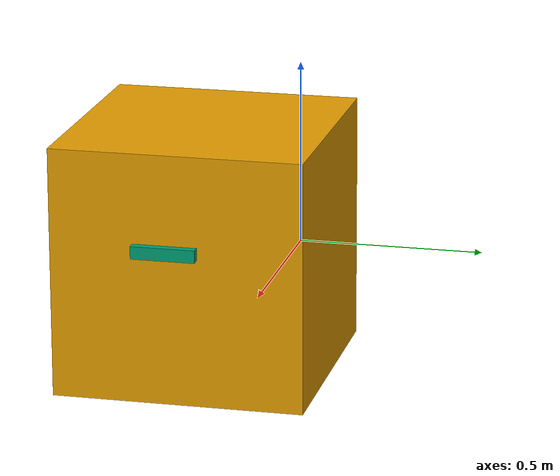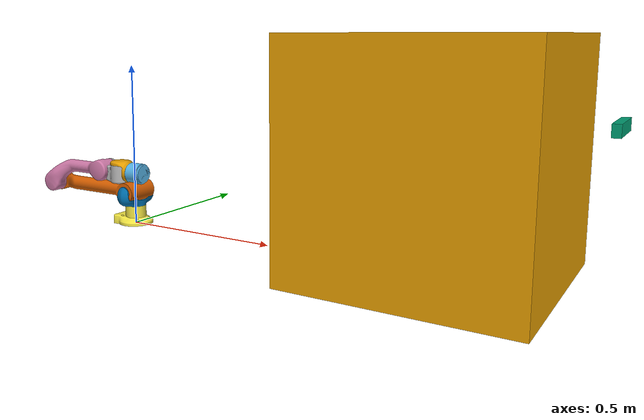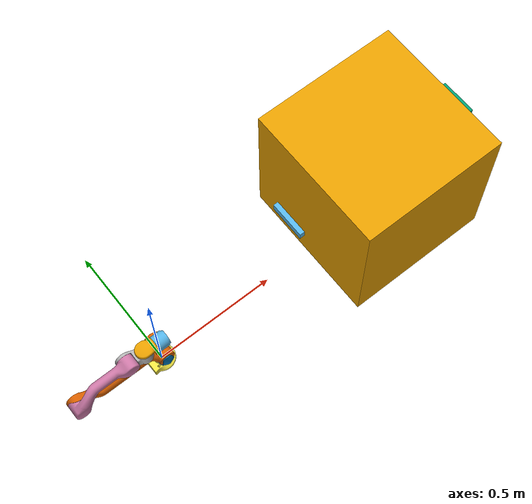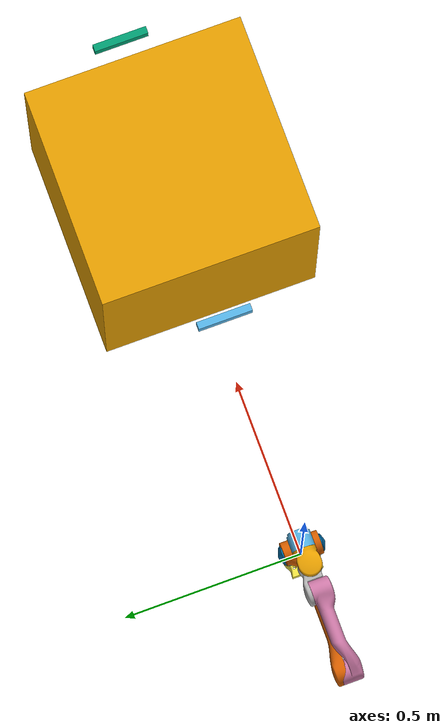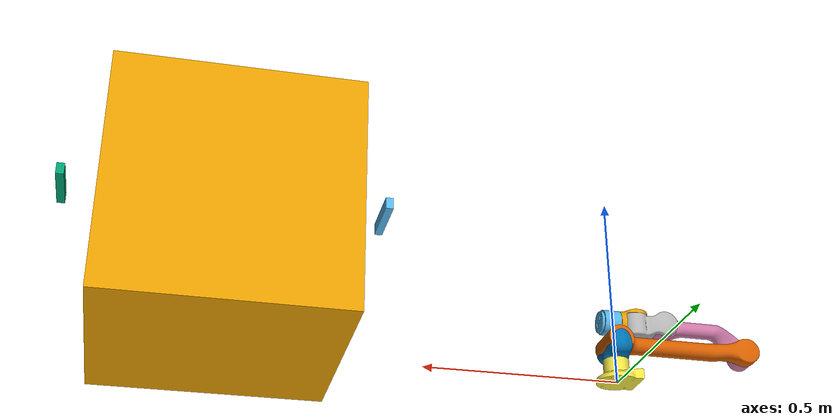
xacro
<?xml version="1.0"?>

<!-- z1_description: Unitree Z1 robotic arm -->
<robot name="z1_description" xmlns:xacro="http://www.ros.org/wiki/xacro">

    <!-- define arguments -->
    <xacro:arg name="UnitreeGripper" default="false"/> <!-- include default end-effector -->

    <!-- include xacro files -->
    <xacro:include filename="$(find z1_description)/xacro/z1.xacro"/>
    <xacro:include filename="$(find z1_description)/xacro/gazebo.xacro"/>
    <xacro:include filename="$(find z1_description)/xacro/box_with_handles.xacro"/>

    <!-- Z1 macro: expands to describe Z1 robotic arm -->
    <xacro:z1 UnitreeGripper="$(arg UnitreeGripper)"/>

    <!-- define world link and statically affix Z1 -->
    <link name="world"/>
    <joint name="base_static_joint" type="fixed">
        <!-- Z1 mounting point wrt origin (configurable) -->
        <origin rpy="0 0 0" xyz="0 0 0"/>
        <!-- define parent and child links -->
        <parent link="world"/>
        <child link="link00"/>
    </joint>

    <!-- Joint to connect box to world -->
    <joint name="box_with_handles" type="floating">
        <origin rpy="0 0 0" xyz="0 0 0"/>
        <parent link="world"/>
        <child link="box"/>
        <dynamics damping="0.1" friction="0.8"/>
    </joint>

</robot>

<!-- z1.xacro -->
<robot name="z1_description" xmlns:xacro="http://www.ros.org/wiki/xacro">

    <!-- Z1 macro: describes Unitree Z1 robotic arm -->
    <xacro:macro name="z1" params="UnitreeGripper:=false">

        <xacro:include filename="$(find z1_description)/xacro/const.xacro"/>
        <xacro:include filename="$(find z1_description)/xacro/transmission.xacro"/>

        <link name="link00">
            <visual>
                <origin rpy="0 0 0" xyz="0 0 0"/>
                <geometry>
                    <mesh filename="package://z1_description/meshes/visual/z1_Link00.dae" scale="1 1 1"/>
                </geometry>
            </visual>
            <collision>
                <geometry>
                    <cylinder length="${motor_height}" radius="${motor_diameter}"/>
                </geometry>
                <origin rpy="0 0 0" xyz="0 0 ${motor_height/2.0}"/>
            </collision>
            <inertial>
                <origin rpy="0 0 0" xyz="${L00_ComX} ${L00_ComY} ${L00_ComZ}"/>
                <mass value="${L00_Mass}"/>
                <inertia
                    ixx="${L00_Ixx}" ixy="${L00_Ixy}" ixz="${L00_Ixz}"
                    iyy="${L00_Iyy}" iyz="${L00_Iyz}"
                    izz="${L00_Izz}"/>
            </inertial>
        </link>

        <joint name="joint1" type="revolute">
            <origin rpy="0 0 0" xyz="0 0 0.0585"/>
            <parent link="link00"/>
            <child link="link01"/>
            <axis xyz="0 0 1"/>
            <dynamics damping="${jointDamping}" friction="${jointFriction}"/>
            <limit effort="${torqueMax}" velocity="${velocityMax}" lower="${joint1_PositionMin}" upper="${joint1_PositionMax}"/>
        </joint>

        <link name="link01">
            <visual>
                <origin rpy="0 0 0" xyz="0 0 0"/>
                <geometry>
                    <mesh filename="package://z1_description/meshes/visual/z1_Link01.dae" scale="1 1 1"/>
                </geometry>
            </visual>
            <inertial>
                <origin rpy="0 0 0" xyz="${L01_ComX} ${L01_ComY} ${L01_ComZ}"/>
                <mass value="${L01_Mass}"/>
                <inertia
                    ixx="${L01_Ixx}" ixy="${L01_Ixy}" ixz="${L01_Ixz}"
                    iyy="${L01_Iyy}" iyz="${L01_Iyz}"
                    izz="${L01_Izz}"/>
            </inertial>
        </link>

        <joint name="joint2" type="revolute">
            <origin rpy="0 0 0" xyz="0 0 0.045"/>
            <parent link="link01"/>
            <child link="link02"/>
            <axis xyz="0 1 0"/>
            <dynamics damping="${2*jointDamping}" friction="${2*jointFriction}"/>
            <limit effort="${2*torqueMax}" velocity="${velocityMax}" lower="${joint2_PositionMin}" upper="${joint2_PositionMax}"/>
        </joint>

        <link name="link02">
            <visual>
                <origin rpy="0 0 0" xyz="0 0 0"/>
                <geometry>
                    <mesh filename="package://z1_description/meshes/visual/z1_Link02.dae" scale="1 1 1"/>
                </geometry>
            </visual>
            <collision>
                <geometry>
                    <cylinder length="${2.0*motor_height}" radius="${motor_diameter}"/>
                </geometry>
                <origin rpy="${PI/2.0} 0 0" xyz="0 0 0"/>
            </collision>
            <collision>
                <geometry>
                    <cylinder length="${arm1_height}" radius="${arm1_diameter}"/>
                </geometry>
                <origin rpy="0 ${PI/2.0} 0" xyz="${-0.045-arm1_height/2.0} 0 0"/>
            </collision>
            <collision>
                <geometry>
                    <cylinder length="${motor_height}" radius="${motor_diameter}"/>
                </geometry>
                <origin rpy="${PI/2.0} 0 0" xyz="-0.35 0 0"/>
            </collision>
            <inertial>
                <origin rpy="0 0 0" xyz="${L02_ComX} ${L02_ComY} ${L02_ComZ}"/>
                <mass value="${L02_Mass}"/>
                <inertia
                    ixx="${L02_Ixx}" ixy="${L02_Ixy}" ixz="${L02_Ixz}"
                    iyy="${L02_Iyy}" iyz="${L02_Iyz}"
                    izz="${L02_Izz}"/>
            </inertial>
        </link>

        <joint name="joint3" type="revolute">
            <origin rpy="0 0 0" xyz="-0.35 0 0"/>
            <parent link="link02"/>
            <child link="link03"/>
            <axis xyz="0 1 0"/>
            <dynamics damping="${jointDamping}" friction="${jointFriction}"/>
            <limit effort="${torqueMax}" velocity="${velocityMax}" lower="${joint3_PositionMin}" upper="${joint3_PositionMax}"/>
        </joint>

        <link name="link03">
            <visual>
                <origin rpy="0 0 0" xyz="0 0 0"/>
                <geometry>
                    <mesh filename="package://z1_description/meshes/visual/z1_Link03.dae" scale="1 1 1"/>
                </geometry>
            </visual>
            <collision>
                <geometry>
                    <cylinder length="${arm2_height-0.01}" radius="${arm2_diameter}"/>
                </geometry>
                <origin rpy="0 ${PI/2.0} 0" xyz="${0.065+arm2_height/2.0} 0 0.055"/>
            </collision>
            <collision>
                <geometry>
                    <cylinder length="0.059" radius="${motor_diameter}"/>
                </geometry>
                <origin rpy="0 ${PI/2.0} ${PI/2.0}" xyz="${0.065+0.185-0.059/2.0} 0 0.055"/>
            </collision>
            <inertial>
                <origin rpy="0 0 0" xyz="${L03_ComX} ${L03_ComY} ${L03_ComZ}"/>
                <mass value="${L03_Mass}"/>
                <inertia
                    ixx="${L03_Ixx}" ixy="${L03_Ixy}" ixz="${L03_Ixz}"
                    iyy="${L03_Iyy}" iyz="${L03_Iyz}"
                    izz="${L03_Izz}"/>
            </inertial>
        </link>

        <joint name="joint4" type="revolute">
            <origin rpy="0 0 0" xyz="0.218 0 0.057"/>
            <parent link="link03"/>
            <child link="link04"/>
            <axis xyz="0 1 0"/>
            <dynamics damping="${jointDamping}" friction="${jointFriction}"/>
            <limit effort="${torqueMax}" velocity="${velocityMax}" lower="${joint4_PositionMin}" upper="${joint4_PositionMax}"/>
        </joint>

        <link name="link04">
            <visual>
                <origin rpy="0 0 0" xyz="0 0 0"/>
                <geometry>
                    <mesh filename="package://z1_description/meshes/visual/z1_Link04.dae" scale="1 1 1"/>
                </geometry>
            </visual>
            <collision>
                <geometry>
                    <cylinder length="${motor_height + 2*0.008}" radius="${motor_diameter}"/>
                </geometry>
                <origin rpy="0 0 0" xyz="0.072 0 0"/>
            </collision>
            <inertial>
                <origin rpy="0 0 0" xyz="${L04_ComX} ${L04_ComY} ${L04_ComZ}"/>
                <mass value="${L04_Mass}"/>
                <inertia
                    ixx="${L04_Ixx}" ixy="${L04_Ixy}" ixz="${L04_Ixz}"
                    iyy="${L04_Iyy}" iyz="${L04_Iyz}"
                    izz="${L04_Izz}"/>
            </inertial>
        </link>

        <joint name="joint5" type="revolute">
            <origin rpy="0 0 0" xyz="0.07 0.0 0.0"/>
            <parent link="link04"/>
            <child link="link05"/>
            <axis xyz="0 0 1"/>
            <dynamics damping="${jointDamping}" friction="${jointFriction}"/>
            <limit effort="${torqueMax}" velocity="${velocityMax}" lower="${joint5_PositionMin}" upper="${joint5_PositionMax}"/>
        </joint>

        <link name="link05">
            <visual>
                <origin rpy="0 0 0" xyz="0 0 0"/>
                <geometry>
                    <mesh filename="package://z1_description/meshes/visual/z1_Link05.dae" scale="1 1 1"/>
                </geometry>
            </visual>
            <inertial>
                <origin rpy="0 0 0" xyz="${L05_ComX} ${L05_ComY} ${L05_ComZ}"/>
                <mass value="${L05_Mass}"/>
                <inertia
                    ixx="${L05_Ixx}" ixy="${L05_Ixy}" ixz="${L05_Ixz}"
                    iyy="${L05_Iyy}" iyz="${L05_Iyz}"
                    izz="${L05_Izz}"/>
            </inertial>
        </link>

        <joint name="joint6" type="revolute">
            <origin rpy="0 0 0" xyz="0.0492 0.0 0.0"/>
            <parent link="link05"/>
            <child link="link06"/>
            <axis xyz="1 0 0"/>
            <dynamics damping="${jointDamping}" friction="${jointFriction}"/>
            <limit effort="${torqueMax}" velocity="${velocityMax}" lower="${joint6_PositionMin}" upper="${joint6_PositionMax}"/>
        </joint>

        <link name="link06">
            <visual>
                <origin rpy="0 0 0" xyz="0 0 0"/>
                <geometry>
                    <mesh filename="package://z1_description/meshes/visual/z1_Link06.dae" scale="1 1 1"/>
                </geometry>
            </visual>
            <collision>
                <geometry>
                    <cylinder length="${motor_height}" radius="${motor_diameter}"/>
                </geometry>
                <origin rpy="0 ${PI/2.0} 0" xyz="${motor_height/2.0} 0 0"/>
            </collision>
            <inertial>
                <origin rpy="0 0 0" xyz="${L06_ComX} ${L06_ComY} ${L06_ComZ}"/>
                <mass value="${L06_Mass}"/>
                <inertia
                    ixx="${L06_Ixx}" ixy="${L06_Ixy}" ixz="${L06_Ixz}"
                    iyy="${L06_Iyy}" iyz="${L06_Iyz}"
                    izz="${L06_Izz}"/>
            </inertial>
        </link>

        <xacro:if value="${UnitreeGripper}">
            <joint name="gripperStator" type="fixed">
                <origin rpy="0 0 0" xyz="0.051 0.0 0.0"/>
                <parent link="link06"/>
                <child link="gripperStator"/>
            </joint>

            <link name="gripperStator">
                <visual>
                    <geometry>
                        <mesh filename="package://z1_description/meshes/visual/z1_GripperStator.dae" scale="1 1 1"/>
                    </geometry>
                </visual>
                <collision>
                    <geometry>
                        <mesh filename="package://z1_description/meshes/collision/z1_GripperStator.STL" scale="1 1 1"/>
                    </geometry>
                </collision>
                <inertial>
                    <origin rpy="0 0 0" xyz="${GripperStator_ComX} ${GripperStator_ComY} ${GripperStator_ComZ}"/>
                    <mass value="${GripperStator_Mass}"/>
                    <inertia
                        ixx="${GripperStator_Ixx}" ixy="${GripperStator_Ixy}" ixz="${GripperStator_Ixz}"
                        iyy="${GripperStator_Iyy}" iyz="${GripperStator_Iyz}"
                        izz="${GripperStator_Izz}"/>
                </inertial>
            </link>

            <joint name="jointGripper" type="revolute">
                <origin rpy="0 0 0" xyz="0.049 0.0 0"/>
                <parent link="gripperStator"/>
                <child link="gripperMover"/>
                <axis xyz="0 1 0"/>
                <dynamics damping="${jointDamping}" friction="${jointFriction}"/>
                <limit effort="${torqueMax}" velocity="${velocityMax}" lower="${Gripper_PositionMin}" upper="${Gripper_PositionMax}"/>
            </joint>

            <link name="gripperMover">
                <visual>
                    <geometry>
                        <mesh filename="package://z1_description/meshes/visual/z1_GripperMover.dae" scale="1 1 1"/>
                    </geometry>
                </visual>
                <collision>
                    <geometry>
                        <mesh filename="package://z1_description/meshes/collision/z1_GripperMover.STL" scale="1 1 1"/>
                    </geometry>
                </collision>
                <inertial>
                    <origin rpy="0 0 0" xyz="${GripperMover_ComX} ${GripperMover_ComY} ${GripperMover_ComZ}"/>
                    <mass value="${GripperMover_Mass}"/>
                    <inertia
                        ixx="${GripperMover_Ixx}" ixy="${GripperMover_Ixy}" ixz="${GripperMover_Ixz}"
                        iyy="${GripperMover_Iyy}" iyz="${GripperMover_Iyz}"
                        izz="${GripperMover_Izz}"/>
                </inertial>
            </link>

            <xacro:motorTransmission name="Gripper"/>

            <gazebo reference="gripperStator">
                <self_collide>true</self_collide>
            </gazebo>

            <gazebo reference="gripperMover">
                <self_collide>true</self_collide>
            </gazebo>
        </xacro:if>

        <xacro:motorTransmission name="1"/>
        <xacro:motorTransmission name="2"/>
        <xacro:motorTransmission name="3"/>
        <xacro:motorTransmission name="4"/>
        <xacro:motorTransmission name="5"/>
        <xacro:motorTransmission name="6"/>

    </xacro:macro>

</robot>

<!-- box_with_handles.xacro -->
<robot name="box_with_handles" xmlns:xacro="http://www.ros.org/wiki/xacro">
  <!-- Define properties -->
  <xacro:property name="box_mass" value="1"/>
  <xacro:property name="box_size" value="0.6"/>
  <xacro:property name="handle_thickness" value="0.02"/>
  <xacro:property name="handle_length" value="0.15"/>
  <xacro:property name="handle_width" value="0.03"/>
  <xacro:property name="handle_offset" value="0.4"/>

  <!-- Box link -->
  <link name="box">
    <inertial>
      <mass value="${box_mass}"/>
      <origin xyz="1 0 0.3" rpy="0 0 0"/>
      <inertia ixx="0.01" ixy="0.0" ixz="0.0" iyy="0.01" iyz="0.0" izz="0.01"/>
    </inertial>
    <visual>
      <geometry>
        <box size="${box_size} ${box_size} ${box_size}"/>
      </geometry>
      <origin xyz="1 0 0.3" rpy="0 0 0"/>
    </visual>
    <collision>
      <geometry>
        <box size="${box_size} ${box_size} ${box_size}"/>
      </geometry>
      <origin xyz="1 0 0.3" rpy="0 0 0"/>
    </collision>
  </link>

  <!-- Left handle -->
  <link name="left_handle">
    <inertial>
      <mass value="0.01"/>
      <origin xyz="1 0 0.3" rpy="0 0 0"/>
      <inertia ixx="0.001" ixy="0.0" ixz="0.0" iyy="0.001" iyz="0.0" izz="0.001"/>
    </inertial>
    <visual>
      <geometry>
        <box size="${handle_thickness} ${handle_length} ${handle_width}"/>
      </geometry>
      <origin xyz="1 0 0.3" rpy="0 0 0"/>
    </visual>
    <collision>
      <geometry>
        <box size="${handle_thickness} ${handle_length} ${handle_width}"/>
      </geometry>
      <origin xyz="1 0 0.3" rpy="0 0 0"/>
    </collision>
  </link>

  <!-- Right handle -->
  <link name="right_handle">
    <inertial>
      <mass value="0.01"/>
      <origin xyz="1 0 0.3" rpy="0 0 0"/>
      <inertia ixx="0.001" ixy="0.0" ixz="0.0" iyy="0.001" iyz="0.0" izz="0.001"/>
    </inertial>
    <visual>
      <geometry>
        <box size="${handle_thickness} ${handle_length} ${handle_width}"/>
      </geometry>
      <origin xyz="1 0 0.3" rpy="0 0 0"/>
    </visual>
    <collision>
      <geometry>
        <box size="${handle_thickness} ${handle_length} ${handle_width}"/>
      </geometry>
      <origin xyz="1 0 0.3" rpy="0 0 0"/>
    </collision>
  </link>

  <!-- Joints -->
  <joint name="left_handle_joint" type="fixed">
    <parent link="box"/>
    <child link="left_handle"/>
    <origin xyz="${-handle_offset} 0 0.1" rpy="0 0 0"/>
    <dynamics friction="0.8"/>
  </joint>

  <joint name="right_handle_joint" type="fixed">
    <parent link="box"/>
    <child link="right_handle"/>
    <origin xyz="${handle_offset} 0 0.1" rpy="0 0 0"/>
    <dynamics friction="0.8"/>
  </joint>
</robot>

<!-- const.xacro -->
<robot name="z1_description" xmlns:xacro="http://www.ros.org/wiki/xacro">

    <!-- Constants for robot dimensions -->
    <xacro:property name="PI" value="3.1415926535897931"/>

    <!-- Link 00 -->
    <xacro:property name="L00_Mass" value="0.47247481"/>
    <xacro:property name="L00_ComX" value="-0.00334984"/>
    <xacro:property name="L00_ComY" value="-0.00013615"/>
    <xacro:property name="L00_ComZ" value="0.02495843"/>
    <xacro:property name="L00_Ixx" value="0.00037937"/>
    <xacro:property name="L00_Ixy" value="0.00000035"/>
    <xacro:property name="L00_Ixz" value="0.00001037"/>
    <xacro:property name="L00_Iyy" value="0.00041521"/>
    <xacro:property name="L00_Iyz" value="0.00000099"/>
    <xacro:property name="L00_Izz" value="0.00053066"/>

    <!-- Link 01 -->
    <xacro:property name="L01_Mass" value="0.67332551"/>
    <xacro:property name="L01_ComX" value="0.00000247"/>
    <xacro:property name="L01_ComY" value="-0.00025198"/>
    <xacro:property name="L01_ComZ" value="0.02317169"/>
    <xacro:property name="L01_Ixx" value="0.00128328"/>
    <xacro:property name="L01_Ixy" value="0.00000006"/>
    <xacro:property name="L01_Ixz" value="0.00000040"/>
    <xacro:property name="L01_Iyy" value="0.00071931"/>
    <xacro:property name="L01_Iyz" value="-0.00000050"/>
    <xacro:property name="L01_Izz" value="0.00083936"/>

    <!-- Link 02 -->
    <xacro:property name="L02_Mass" value="1.19132258"/>
    <xacro:property name="L02_ComX" value="-0.11012601"/>
    <xacro:property name="L02_ComY" value="0.00240029"/>
    <xacro:property name="L02_ComZ" value="0.00158266"/>
    <xacro:property name="L02_Ixx" value="0.00102138"/>
    <xacro:property name="L02_Ixy" value="-0.00062358"/>
    <xacro:property name="L02_Ixz" value="-0.00000513"/>
    <xacro:property name="L02_Iyy" value="0.02429457"/>
    <xacro:property name="L02_Iyz" value="0.00000210"/>
    <xacro:property name="L02_Izz" value="0.02466114"/>

    <!-- Link 03 -->
    <xacro:property name="L03_Mass" value="0.83940874"/>
    <xacro:property name="L03_ComX" value="0.10609208"/>
    <xacro:property name="L03_ComY" value="-0.00541815"/>
    <xacro:property name="L03_ComZ" value="0.03476383"/>
    <xacro:property name="L03_Ixx" value="0.00108061"/>
    <xacro:property name="L03_Ixy" value="0.00008669"/>
    <xacro:property name="L03_Ixz" value="0.00208102"/>
    <xacro:property name="L03_Iyy" value="0.00954238"/>
    <xacro:property name="L03_Iyz" value="0.00001332"/>
    <xacro:property name="L03_Izz" value="0.00886621"/>

    <!-- Link 04 -->
    <xacro:property name="L04_Mass" value="0.56404563"/>
    <xacro:property name="L04_ComX" value="0.04366681"/>
    <xacro:property name="L04_ComY" value="0.00364738"/>
    <xacro:property name="L04_ComZ" value="-0.00170192"/>
    <xacro:property name="L04_Ixx" value="0.00031576"/>
    <xacro:property name="L04_Ixy" value="-0.00008130"/>
    <xacro:property name="L04_Ixz" value="-0.00004091"/>
    <xacro:property name="L04_Iyy" value="0.00092996"/>
    <xacro:property name="L04_Iyz" value="0.00000596"/>
    <xacro:property name="L04_Izz" value="0.00097912"/>

    <!-- Link 05 -->
    <xacro:property name="L05_Mass" value="0.38938492"/>
    <xacro:property name="L05_ComX" value="0.03121533"/>
    <xacro:property name="L05_ComY" value="0.0"/>
    <xacro:property name="L05_ComZ" value="0.00646316"/>
    <xacro:property name="L05_Ixx" value="0.00017605"/>
    <xacro:property name="L05_Ixy" value="-0.00000040"/>
    <xacro:property name="L05_Ixz" value="-0.00005689"/>
    <xacro:property name="L05_Iyy" value="0.00055896"/>
    <xacro:property name="L05_Iyz" value="0.00000013"/>
    <xacro:property name="L05_Izz" value="0.00053860"/>

    <!-- Link 06 -->
    <xacro:property name="L06_Mass" value="0.28875807"/>
    <xacro:property name="L06_ComX" value="0.02415690"/>
    <xacro:property name="L06_ComY" value="-0.00017355"/>
    <xacro:property name="L06_ComZ" value="-0.00143876"/>
    <xacro:property name="L06_Ixx" value="0.00018328"/>
    <xacro:property name="L06_Ixy" value="-0.00000122"/>
    <xacro:property name="L06_Ixz" value="-0.00000054"/>
    <xacro:property name="L06_Iyy" value="0.00014750"/>
    <xacro:property name="L06_Iyz" value="-0.00000008"/>
    <xacro:property name="L06_Izz" value="0.00014680"/>

    <!-- Link Gripper Stator -->
    <xacro:property name="GripperStator_Mass" value="0.52603655"/>
    <xacro:property name="GripperStator_ComX" value="0.04764427"/>
    <xacro:property name="GripperStator_ComY" value="-0.00035819"/>
    <xacro:property name="GripperStator_ComZ" value="-0.00249162"/>
    <xacro:property name="GripperStator_Ixx" value="0.00038683"/>
    <xacro:property name="GripperStator_Ixy" value="0.00000359"/>
    <xacro:property name="GripperStator_Ixz" value="-0.00007662"/>
    <xacro:property name="GripperStator_Iyy" value="0.00068614"/>
    <xacro:property name="GripperStator_Iyz" value="-0.00000209"/>
    <xacro:property name="GripperStator_Izz" value="0.00066293"/>

    <!-- Link Gripper Mover -->
    <xacro:property name="GripperMover_Mass" value="0.27621302"/>
    <xacro:property name="GripperMover_ComX" value="0.01320633"/>
    <xacro:property name="GripperMover_ComY" value="0.00476708"/>
    <xacro:property name="GripperMover_ComZ" value="0.00380534"/>
    <xacro:property name="GripperMover_Ixx" value="0.00017716"/>
    <xacro:property name="GripperMover_Ixy" value="-0.00001683"/>
    <xacro:property name="GripperMover_Ixz" value="0.00001786"/>
    <xacro:property name="GripperMover_Iyy" value="0.00026787"/>
    <xacro:property name="GripperMover_Iyz" value="-0.00000262"/>
    <xacro:property name="GripperMover_Izz" value="0.00035728"/>

    <!-- joint limits -->
    <xacro:property name="jointDamping" value="1.0"/>
    <xacro:property name="jointFriction" value="1.0"/>

    <xacro:property name="torqueMax" value="30.0"/>
    <xacro:property name="velocityMax" value="3.1415"/>
    <xacro:property name="joint1_PositionMin" value="${-PI*150/180}"/>
    <xacro:property name="joint1_PositionMax" value="${PI*150/180}"/>
    <xacro:property name="joint2_PositionMin" value="0.0"/>
    <xacro:property name="joint2_PositionMax" value="${PI*170/180}"/>
    <xacro:property name="joint3_PositionMin" value="${-PI*165/180}"/>
    <xacro:property name="joint3_PositionMax" value="0.0"/>
    <xacro:property name="joint4_PositionMin" value="${-PI*87/180}"/>
    <xacro:property name="joint4_PositionMax" value="${PI*87/180}"/>
    <xacro:property name="joint5_PositionMin" value="${-PI*77/180}"/>
    <xacro:property name="joint5_PositionMax" value="${PI*77/180}"/>
    <xacro:property name="joint6_PositionMin" value="${-PI*160/180}"/>
    <xacro:property name="joint6_PositionMax" value="${PI*160/180}"/>
    <xacro:property name="Gripper_PositionMin" value="${-PI*90/180}"/>
    <xacro:property name="Gripper_PositionMax" value="0.0"/>

    <!-- collision size -->
    <xacro:property name="motor_diameter" value="${0.065/2.0}"/>
    <xacro:property name="motor_height" value="0.051"/>
    <xacro:property name="arm1_diameter" value="${0.045/2.0}"/>
    <xacro:property name="arm1_height" value="0.235"/>
    <xacro:property name="arm2_diameter" value="${0.04/2.0}"/>
    <xacro:property name="arm2_height" value="0.126"/>
    <xacro:property name="gripperBox_X" value="0."/>
    <xacro:property name="gripperBox_Y" value="0."/>
    <xacro:property name="gripperBox_Z" value="0."/>
</robot>
